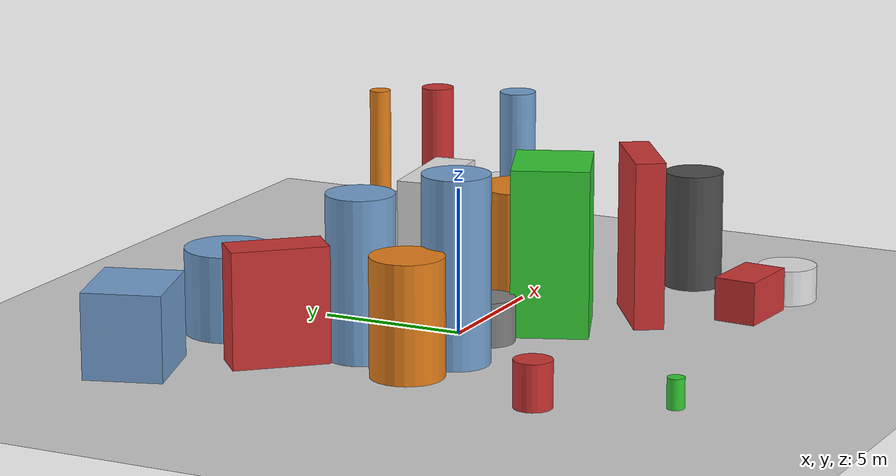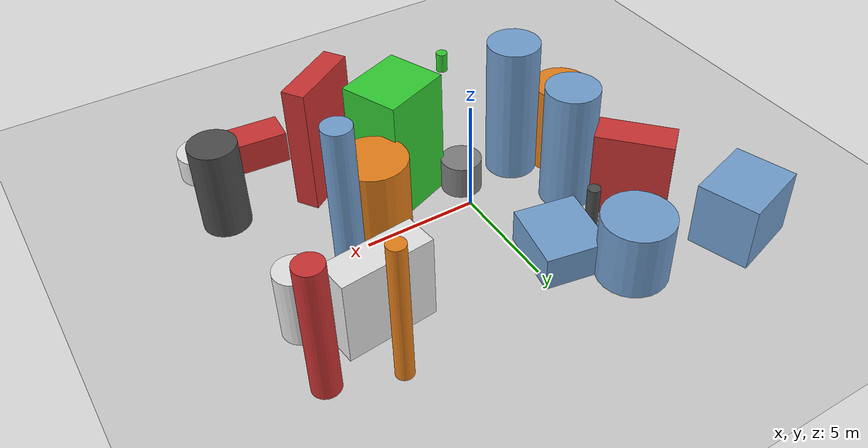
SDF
<?xml version='1.0'?>
<sdf version='1.6'>
  <world name='default'>
    <!-- Sun light -->
    <light name='sun' type='directional'>
      <cast_shadows>1</cast_shadows>
      <pose>0 0 10 0 0 0</pose>
      <diffuse>0.8 0.8 0.8 1</diffuse>
      <specular>0.2 0.2 0.2 1</specular>
      <attenuation>
        <range>1000</range>
        <constant>0.9</constant>
        <linear>0.01</linear>
        <quadratic>0.001</quadratic>
      </attenuation>
      <direction>-0.5 0.1 -0.9</direction>
    </light>

    <!-- Ground plane -->
    <model name='ground_plane'>
      <static>1</static>
      <link name='link'>
        <collision name='collision'>
          <geometry>
            <plane>
              <normal>0 0 1</normal>
              <size>100 100</size>
            </plane>
          </geometry>
          <surface>
            <contact>
              <collide_bitmask>65535</collide_bitmask>
              <ode/>
            </contact>
            <friction>
              <ode>
                <mu>100</mu>
                <mu2>50</mu2>
              </ode>
              <torsional><ode/></torsional>
            </friction>
            <bounce/>
          </surface>
          <max_contacts>10</max_contacts>
        </collision>
        <visual name='visual'>
          <cast_shadows>0</cast_shadows>
          <geometry>
            <plane>
              <normal>0 0 1</normal>
              <size>100 100</size>
            </plane>
          </geometry>
          <material>
            <script>
              <uri>file://media/materials/scripts/gazebo.material</uri>
              <n>Gazebo/Grey</n>
            </script>
          </material>
        </visual>
      </link>
    </model>

    <!-- Environment -->
    <magnetic_field>6e-06 2.3e-05 -4.2e-05</magnetic_field>
    <atmosphere type='adiabatic'/>
    <physics name='default_physics' default='0' type='ode'>
      <gravity>0 0 -9.8</gravity>
      <max_step_size>0.004</max_step_size>
      <real_time_factor>1</real_time_factor>
      <real_time_update_rate>250</real_time_update_rate>
    </physics>
    <scene>
      <ambient>0.4 0.4 0.4 1</ambient>
      <background>0.7 0.7 0.7 1</background>
      <shadows>1</shadows>
    </scene>
    <wind/>
    <spherical_coordinates>
      <surface_model>EARTH_WGS84</surface_model>
      <latitude_deg>0</latitude_deg>
      <longitude_deg>0</longitude_deg>
      <elevation>0</elevation>
      <heading_deg>0</heading_deg>
    </spherical_coordinates>

    <!-- ============ OBSTACLES (22) ============ -->
    <model name='obs_00'>
      <static>1</static>
      <link name='link'>
        <visual name='visual'>
          <geometry>
            <cylinder>
              <radius>0.5765</radius>
              <length>6.0490</length>
            </cylinder>
          </geometry>
          <material>
            <script>
              <n>Gazebo/Red</n>
              <uri>file://media/materials/scripts/gazebo.material</uri>
            </script>
            <ambient>0.8 0.2 0.2 1</ambient>
          </material>
        </visual>
        <collision name='collision'>
          <geometry>
            <cylinder>
              <radius>0.5765</radius>
              <length>6.0490</length>
            </cylinder>
          </geometry>
          <max_contacts>10</max_contacts>
          <surface>
            <contact><ode/></contact>
            <bounce/>
            <friction>
              <ode><mu>1</mu><mu2>1</mu2></ode>
              <torsional><ode/></torsional>
            </friction>
          </surface>
        </collision>
      </link>
      <pose>9.6769 5.6527 3.0245 0 0 0.9633</pose>
    </model>

    <model name='obs_01'>
      <static>1</static>
      <link name='link'>
        <visual name='visual'>
          <geometry>
            <cylinder>
              <radius>1.1413</radius>
              <length>6.3353</length>
            </cylinder>
          </geometry>
          <material>
            <script>
              <n>Gazebo/Blue</n>
              <uri>file://media/materials/scripts/gazebo.material</uri>
            </script>
            <ambient>0.447 0.624 0.812 1</ambient>
          </material>
        </visual>
        <collision name='collision'>
          <geometry>
            <cylinder>
              <radius>1.1413</radius>
              <length>6.3353</length>
            </cylinder>
          </geometry>
          <max_contacts>10</max_contacts>
          <surface>
            <contact><ode/></contact>
            <bounce/>
            <friction>
              <ode><mu>1</mu><mu2>1</mu2></ode>
              <torsional><ode/></torsional>
            </friction>
          </surface>
        </collision>
      </link>
      <pose>-3.0559 -1.4324 3.1677 0 0 0.3756</pose>
    </model>

    <model name='obs_02'>
      <static>1</static>
      <link name='link'>
        <visual name='visual'>
          <geometry>
            <cylinder>
              <radius>1.5164</radius>
              <length>2.9355</length>
            </cylinder>
          </geometry>
          <material>
            <script>
              <n>Gazebo/Blue</n>
              <uri>file://media/materials/scripts/gazebo.material</uri>
            </script>
            <ambient>0.447 0.624 0.812 1</ambient>
          </material>
        </visual>
        <collision name='collision'>
          <geometry>
            <cylinder>
              <radius>1.5164</radius>
              <length>2.9355</length>
            </cylinder>
          </geometry>
          <max_contacts>10</max_contacts>
          <surface>
            <contact><ode/></contact>
            <bounce/>
            <friction>
              <ode><mu>1</mu><mu2>1</mu2></ode>
              <torsional><ode/></torsional>
            </friction>
          </surface>
        </collision>
      </link>
      <pose>-3.1754 6.9915 1.4677 0 0 0.6017</pose>
    </model>

    <model name='obs_03'>
      <static>1</static>
      <link name='link'>
        <visual name='visual'>
          <geometry>
            <box>
              <size>2.3362 1.4905 1.5026</size>
            </box>
          </geometry>
          <material>
            <script>
              <n>Gazebo/Red</n>
              <uri>file://media/materials/scripts/gazebo.material</uri>
            </script>
            <ambient>0.8 0.2 0.2 1</ambient>
          </material>
        </visual>
        <collision name='collision'>
          <geometry>
            <box>
              <size>2.3362 1.4905 1.5026</size>
            </box>
          </geometry>
          <max_contacts>10</max_contacts>
          <surface>
            <contact><ode/></contact>
            <bounce/>
            <friction>
              <ode><mu>1</mu><mu2>1</mu2></ode>
              <torsional><ode/></torsional>
            </friction>
          </surface>
        </collision>
      </link>
      <pose>6.4466 -7.8892 0.7513 0 0 3.0681</pose>
    </model>

    <model name='obs_04'>
      <static>1</static>
      <link name='link'>
        <visual name='visual'>
          <geometry>
            <cylinder>
              <radius>0.8176</radius>
              <length>3.1159</length>
            </cylinder>
          </geometry>
          <material>
            <script>
              <n>Gazebo/White</n>
              <uri>file://media/materials/scripts/gazebo.material</uri>
            </script>
            <ambient>0.9 0.9 0.9 1</ambient>
          </material>
        </visual>
        <collision name='collision'>
          <geometry>
            <cylinder>
              <radius>0.8176</radius>
              <length>3.1159</length>
            </cylinder>
          </geometry>
          <max_contacts>10</max_contacts>
          <surface>
            <contact><ode/></contact>
            <bounce/>
            <friction>
              <ode><mu>1</mu><mu2>1</mu2></ode>
              <torsional><ode/></torsional>
            </friction>
          </surface>
        </collision>
      </link>
      <pose>9.2158 2.7117 1.5579 0 0 0.9307</pose>
    </model>

    <model name='obs_05'>
      <static>1</static>
      <link name='link'>
        <visual name='visual'>
          <geometry>
            <box>
              <size>1.4601 3.9100 3.7668</size>
            </box>
          </geometry>
          <material>
            <script>
              <n>Gazebo/White</n>
              <uri>file://media/materials/scripts/gazebo.material</uri>
            </script>
            <ambient>0.9 0.9 0.9 1</ambient>
          </material>
        </visual>
        <collision name='collision'>
          <geometry>
            <box>
              <size>1.4601 3.9100 3.7668</size>
            </box>
          </geometry>
          <max_contacts>10</max_contacts>
          <surface>
            <contact><ode/></contact>
            <bounce/>
            <friction>
              <ode><mu>1</mu><mu2>1</mu2></ode>
              <torsional><ode/></torsional>
            </friction>
          </surface>
        </collision>
      </link>
      <pose>6.5741 4.1462 1.8834 0 0 1.6780</pose>
    </model>

    <model name='obs_06'>
      <static>1</static>
      <link name='link'>
        <visual name='visual'>
          <geometry>
            <box>
              <size>2.7325 3.1348 1.5129</size>
            </box>
          </geometry>
          <material>
            <script>
              <n>Gazebo/Blue</n>
              <uri>file://media/materials/scripts/gazebo.material</uri>
            </script>
            <ambient>0.447 0.624 0.812 1</ambient>
          </material>
        </visual>
        <collision name='collision'>
          <geometry>
            <box>
              <size>2.7325 3.1348 1.5129</size>
            </box>
          </geometry>
          <max_contacts>10</max_contacts>
          <surface>
            <contact><ode/></contact>
            <bounce/>
            <friction>
              <ode><mu>1</mu><mu2>1</mu2></ode>
              <torsional><ode/></torsional>
            </friction>
          </surface>
        </collision>
      </link>
      <pose>-1.2903 4.6759 0.7565 0 0 2.9659</pose>
    </model>

    <model name='obs_07'>
      <static>1</static>
      <link name='link'>
        <visual name='visual'>
          <geometry>
            <cylinder>
              <radius>1.0184</radius>
              <length>4.0833</length>
            </cylinder>
          </geometry>
          <material>
            <script>
              <n>Gazebo/DarkGrey</n>
              <uri>file://media/materials/scripts/gazebo.material</uri>
            </script>
            <ambient>0.3 0.3 0.3 1</ambient>
          </material>
        </visual>
        <collision name='collision'>
          <geometry>
            <cylinder>
              <radius>1.0184</radius>
              <length>4.0833</length>
            </cylinder>
          </geometry>
          <max_contacts>10</max_contacts>
          <surface>
            <contact><ode/></contact>
            <bounce/>
            <friction>
              <ode><mu>1</mu><mu2>1</mu2></ode>
              <torsional><ode/></torsional>
            </friction>
          </surface>
        </collision>
      </link>
      <pose>9.3095 -4.5984 2.0416 0 0 1.8035</pose>
    </model>

    <model name='obs_08'>
      <static>1</static>
      <link name='link'>
        <visual name='visual'>
          <geometry>
            <cylinder>
              <radius>0.6171</radius>
              <length>7.0321</length>
            </cylinder>
          </geometry>
          <material>
            <script>
              <n>Gazebo/Blue</n>
              <uri>file://media/materials/scripts/gazebo.material</uri>
            </script>
            <ambient>0.447 0.624 0.812 1</ambient>
          </material>
        </visual>
        <collision name='collision'>
          <geometry>
            <cylinder>
              <radius>0.6171</radius>
              <length>7.0321</length>
            </cylinder>
          </geometry>
          <max_contacts>10</max_contacts>
          <surface>
            <contact><ode/></contact>
            <bounce/>
            <friction>
              <ode><mu>1</mu><mu2>1</mu2></ode>
              <torsional><ode/></torsional>
            </friction>
          </surface>
        </collision>
      </link>
      <pose>6.1640 0.7635 3.5160 0 0 3.0332</pose>
    </model>

    <model name='obs_09'>
      <static>1</static>
      <link name='link'>
        <visual name='visual'>
          <geometry>
            <cylinder>
              <radius>0.8913</radius>
              <length>1.5186</length>
            </cylinder>
          </geometry>
          <material>
            <script>
              <n>Gazebo/Grey</n>
              <uri>file://media/materials/scripts/gazebo.material</uri>
            </script>
            <ambient>0.5 0.5 0.5 1</ambient>
          </material>
        </visual>
        <collision name='collision'>
          <geometry>
            <cylinder>
              <radius>0.8913</radius>
              <length>1.5186</length>
            </cylinder>
          </geometry>
          <max_contacts>10</max_contacts>
          <surface>
            <contact><ode/></contact>
            <bounce/>
            <friction>
              <ode><mu>1</mu><mu2>1</mu2></ode>
              <torsional><ode/></torsional>
            </friction>
          </surface>
        </collision>
      </link>
      <pose>-0.3300 -1.2885 0.7593 0 0 2.5828</pose>
    </model>

    <model name='obs_10'>
      <static>1</static>
      <link name='link'>
        <visual name='visual'>
          <geometry>
            <box>
              <size>1.0310 3.3390 5.7456</size>
            </box>
          </geometry>
          <material>
            <script>
              <n>Gazebo/Red</n>
              <uri>file://media/materials/scripts/gazebo.material</uri>
            </script>
            <ambient>0.8 0.2 0.2 1</ambient>
          </material>
        </visual>
        <collision name='collision'>
          <geometry>
            <box>
              <size>1.0310 3.3390 5.7456</size>
            </box>
          </geometry>
          <max_contacts>10</max_contacts>
          <surface>
            <contact><ode/></contact>
            <bounce/>
            <friction>
              <ode><mu>1</mu><mu2>1</mu2></ode>
              <torsional><ode/></torsional>
            </friction>
          </surface>
        </collision>
      </link>
      <pose>4.6205 -4.6321 2.8728 0 0 2.1565</pose>
    </model>

    <model name='obs_11'>
      <static>1</static>
      <link name='link'>
        <visual name='visual'>
          <geometry>
            <cylinder>
              <radius>0.3691</radius>
              <length>6.3511</length>
            </cylinder>
          </geometry>
          <material>
            <script>
              <n>Gazebo/Orange</n>
              <uri>file://media/materials/scripts/gazebo.material</uri>
            </script>
            <ambient>0.9 0.5 0.1 1</ambient>
          </material>
        </visual>
        <collision name='collision'>
          <geometry>
            <cylinder>
              <radius>0.3691</radius>
              <length>6.3511</length>
            </cylinder>
          </geometry>
          <max_contacts>10</max_contacts>
          <surface>
            <contact><ode/></contact>
            <bounce/>
            <friction>
              <ode><mu>1</mu><mu2>1</mu2></ode>
              <torsional><ode/></torsional>
            </friction>
          </surface>
        </collision>
      </link>
      <pose>7.0343 6.6146 3.1756 0 0 3.1225</pose>
    </model>

    <model name='obs_12'>
      <static>1</static>
      <link name='link'>
        <visual name='visual'>
          <geometry>
            <box>
              <size>2.6645 3.2149 2.9019</size>
            </box>
          </geometry>
          <material>
            <script>
              <n>Gazebo/Blue</n>
              <uri>file://media/materials/scripts/gazebo.material</uri>
            </script>
            <ambient>0.447 0.624 0.812 1</ambient>
          </material>
        </visual>
        <collision name='collision'>
          <geometry>
            <box>
              <size>2.6645 3.2149 2.9019</size>
            </box>
          </geometry>
          <max_contacts>10</max_contacts>
          <surface>
            <contact><ode/></contact>
            <bounce/>
            <friction>
              <ode><mu>1</mu><mu2>1</mu2></ode>
              <torsional><ode/></torsional>
            </friction>
          </surface>
        </collision>
      </link>
      <pose>-8.2667 7.6326 1.4509 0 0 1.8728</pose>
    </model>

    <model name='obs_13'>
      <static>1</static>
      <link name='link'>
        <visual name='visual'>
          <geometry>
            <cylinder>
              <radius>1.2388</radius>
              <length>4.0018</length>
            </cylinder>
          </geometry>
          <material>
            <script>
              <n>Gazebo/Orange</n>
              <uri>file://media/materials/scripts/gazebo.material</uri>
            </script>
            <ambient>0.9 0.5 0.1 1</ambient>
          </material>
        </visual>
        <collision name='collision'>
          <geometry>
            <cylinder>
              <radius>1.2388</radius>
              <length>4.0018</length>
            </cylinder>
          </geometry>
          <max_contacts>10</max_contacts>
          <surface>
            <contact><ode/></contact>
            <bounce/>
            <friction>
              <ode><mu>1</mu><mu2>1</mu2></ode>
              <torsional><ode/></torsional>
            </friction>
          </surface>
        </collision>
      </link>
      <pose>-5.1227 -0.7058 2.0009 0 0 0.9342</pose>
    </model>

    <model name='obs_14'>
      <static>1</static>
      <link name='link'>
        <visual name='visual'>
          <geometry>
            <box>
              <size>2.6337 3.0903 5.7380</size>
            </box>
          </geometry>
          <material>
            <script>
              <n>Gazebo/Green</n>
              <uri>file://media/materials/scripts/gazebo.material</uri>
            </script>
            <ambient>0.2 0.8 0.2 1</ambient>
          </material>
        </visual>
        <collision name='collision'>
          <geometry>
            <box>
              <size>2.6337 3.0903 5.7380</size>
            </box>
          </geometry>
          <max_contacts>10</max_contacts>
          <surface>
            <contact><ode/></contact>
            <bounce/>
            <friction>
              <ode><mu>1</mu><mu2>1</mu2></ode>
              <torsional><ode/></torsional>
            </friction>
          </surface>
        </collision>
      </link>
      <pose>2.2066 -2.4202 2.8690 0 0 1.9510</pose>
    </model>

    <model name='obs_15'>
      <static>1</static>
      <link name='link'>
        <visual name='visual'>
          <geometry>
            <cylinder>
              <radius>0.6396</radius>
              <length>1.5683</length>
            </cylinder>
          </geometry>
          <material>
            <script>
              <n>Gazebo/Red</n>
              <uri>file://media/materials/scripts/gazebo.material</uri>
            </script>
            <ambient>0.8 0.2 0.2 1</ambient>
          </material>
        </visual>
        <collision name='collision'>
          <geometry>
            <cylinder>
              <radius>0.6396</radius>
              <length>1.5683</length>
            </cylinder>
          </geometry>
          <max_contacts>10</max_contacts>
          <surface>
            <contact><ode/></contact>
            <bounce/>
            <friction>
              <ode><mu>1</mu><mu2>1</mu2></ode>
              <torsional><ode/></torsional>
            </friction>
          </surface>
        </collision>
      </link>
      <pose>-6.3632 -5.7576 0.7842 0 0 1.9651</pose>
    </model>

    <model name='obs_16'>
      <static>1</static>
      <link name='link'>
        <visual name='visual'>
          <geometry>
            <cylinder>
              <radius>0.2889</radius>
              <length>1.0187</length>
            </cylinder>
          </geometry>
          <material>
            <script>
              <n>Gazebo/Green</n>
              <uri>file://media/materials/scripts/gazebo.material</uri>
            </script>
            <ambient>0.2 0.8 0.2 1</ambient>
          </material>
        </visual>
        <collision name='collision'>
          <geometry>
            <cylinder>
              <radius>0.2889</radius>
              <length>1.0187</length>
            </cylinder>
          </geometry>
          <max_contacts>10</max_contacts>
          <surface>
            <contact><ode/></contact>
            <bounce/>
            <friction>
              <ode><mu>1</mu><mu2>1</mu2></ode>
              <torsional><ode/></torsional>
            </friction>
          </surface>
        </collision>
      </link>
      <pose>-4.4746 -9.7970 0.5094 0 0 0.5461</pose>
    </model>

    <model name='obs_17'>
      <static>1</static>
      <link name='link'>
        <visual name='visual'>
          <geometry>
            <cylinder>
              <radius>1.0193</radius>
              <length>1.2285</length>
            </cylinder>
          </geometry>
          <material>
            <script>
              <n>Gazebo/White</n>
              <uri>file://media/materials/scripts/gazebo.material</uri>
            </script>
            <ambient>0.9 0.9 0.9 1</ambient>
          </material>
        </visual>
        <collision name='collision'>
          <geometry>
            <cylinder>
              <radius>1.0193</radius>
              <length>1.2285</length>
            </cylinder>
          </geometry>
          <max_contacts>10</max_contacts>
          <surface>
            <contact><ode/></contact>
            <bounce/>
            <friction>
              <ode><mu>1</mu><mu2>1</mu2></ode>
              <torsional><ode/></torsional>
            </friction>
          </surface>
        </collision>
      </link>
      <pose>8.9613 -8.2877 0.6142 0 0 2.1657</pose>
    </model>

    <model name='obs_18'>
      <static>1</static>
      <link name='link'>
        <visual name='visual'>
          <geometry>
            <cylinder>
              <radius>1.4505</radius>
              <length>4.1782</length>
            </cylinder>
          </geometry>
          <material>
            <script>
              <n>Gazebo/Orange</n>
              <uri>file://media/materials/scripts/gazebo.material</uri>
            </script>
            <ambient>0.9 0.5 0.1 1</ambient>
          </material>
        </visual>
        <collision name='collision'>
          <geometry>
            <cylinder>
              <radius>1.4505</radius>
              <length>4.1782</length>
            </cylinder>
          </geometry>
          <max_contacts>10</max_contacts>
          <surface>
            <contact><ode/></contact>
            <bounce/>
            <friction>
              <ode><mu>1</mu><mu2>1</mu2></ode>
              <torsional><ode/></torsional>
            </friction>
          </surface>
        </collision>
      </link>
      <pose>4.4015 -0.2284 2.0891 0 0 2.2210</pose>
    </model>

    <model name='obs_19'>
      <static>1</static>
      <link name='link'>
        <visual name='visual'>
          <geometry>
            <box>
              <size>1.4259 3.2694 3.9489</size>
            </box>
          </geometry>
          <material>
            <script>
              <n>Gazebo/Red</n>
              <uri>file://media/materials/scripts/gazebo.material</uri>
            </script>
            <ambient>0.8 0.2 0.2 1</ambient>
          </material>
        </visual>
        <collision name='collision'>
          <geometry>
            <box>
              <size>1.4259 3.2694 3.9489</size>
            </box>
          </geometry>
          <max_contacts>10</max_contacts>
          <surface>
            <contact><ode/></contact>
            <bounce/>
            <friction>
              <ode><mu>1</mu><mu2>1</mu2></ode>
              <torsional><ode/></torsional>
            </friction>
          </surface>
        </collision>
      </link>
      <pose>-5.5681 3.8357 1.9745 0 0 0.7333</pose>
    </model>

    <model name='obs_20'>
      <static>1</static>
      <link name='link'>
        <visual name='visual'>
          <geometry>
            <cylinder>
              <radius>1.1574</radius>
              <length>5.5334</length>
            </cylinder>
          </geometry>
          <material>
            <script>
              <n>Gazebo/Blue</n>
              <uri>file://media/materials/scripts/gazebo.material</uri>
            </script>
            <ambient>0.447 0.624 0.812 1</ambient>
          </material>
        </visual>
        <collision name='collision'>
          <geometry>
            <cylinder>
              <radius>1.1574</radius>
              <length>5.5334</length>
            </cylinder>
          </geometry>
          <max_contacts>10</max_contacts>
          <surface>
            <contact><ode/></contact>
            <bounce/>
            <friction>
              <ode><mu>1</mu><mu2>1</mu2></ode>
              <torsional><ode/></torsional>
            </friction>
          </surface>
        </collision>
      </link>
      <pose>-3.8759 1.6311 2.7667 0 0 1.3356</pose>
    </model>

    <model name='obs_21'>
      <static>1</static>
      <link name='link'>
        <visual name='visual'>
          <geometry>
            <cylinder>
              <radius>0.2821</radius>
              <length>2.1615</length>
            </cylinder>
          </geometry>
          <material>
            <script>
              <n>Gazebo/DarkGrey</n>
              <uri>file://media/materials/scripts/gazebo.material</uri>
            </script>
            <ambient>0.3 0.3 0.3 1</ambient>
          </material>
        </visual>
        <collision name='collision'>
          <geometry>
            <cylinder>
              <radius>0.2821</radius>
              <length>2.1615</length>
            </cylinder>
          </geometry>
          <max_contacts>10</max_contacts>
          <surface>
            <contact><ode/></contact>
            <bounce/>
            <friction>
              <ode><mu>1</mu><mu2>1</mu2></ode>
              <torsional><ode/></torsional>
            </friction>
          </surface>
        </collision>
      </link>
      <pose>-3.3842 4.0571 1.0807 0 0 2.5969</pose>
    </model>

    <!-- GUI camera -->
    <gui fullscreen='0'>
      <camera name='user_camera'>
        <pose>-15 0 18 0 0.85 0.15</pose>
        <view_controller>orbit</view_controller>
        <projection_type>perspective</projection_type>
      </camera>
    </gui>
  </world>
</sdf>
